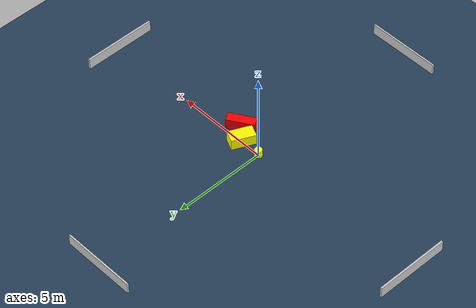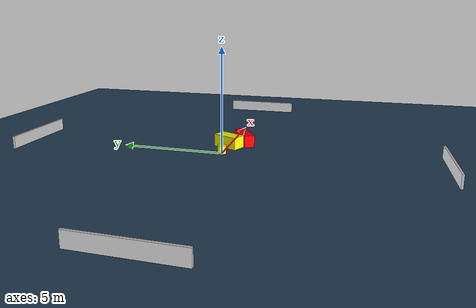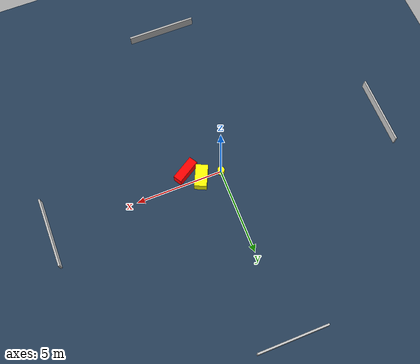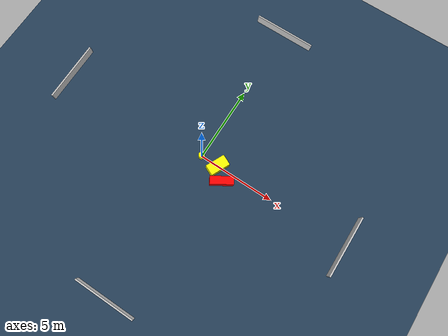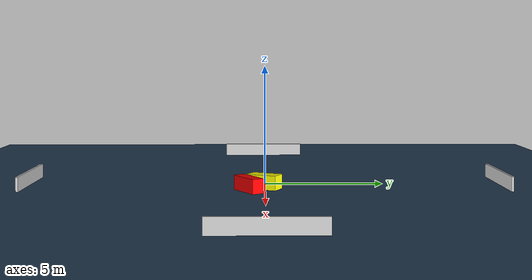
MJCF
<?xml version="1.0" ?>
<mujoco model="generated_environment">
  <option timestep="0.01" integrator="RK4" cone="elliptic"/>
  <default>
    <geom density="1"/>
  </default>
  <asset>
    <texture builtin="gradient" height="3072" name="skybox" rgb1="0.3 0.5 0.7" rgb2="0 0 0" type="skybox" width="512"/>
    <texture builtin="checker" height="300" name="groundplane" rgb1="0.2 0.3 0.4" rgb2="0.1 0.2 0.3" type="2d" width="300"/>
    <material name="groundplane" reflectance="0.2" texrepeat="5 5" texture="groundplane"/>
  </asset>
  <worldbody>
    <light dir="0 0 -1" directional="true" pos="0 0 1.5"/>
    <geom condim="3" friction="0.5 0.005 0.001" material="groundplane" name="floor" pos="0 0 0" size="0 0 0.05" type="plane"/>
    <body name="walls">
      <geom name="wall_1" condim="4" pos="-10.0 0.0 0.3" rgba="0.800000011920929 0.800000011920929 0.800000011920929 1.0" size="0.05 2.0 0.3" type="box"/>
      <geom name="wall_2" condim="4" pos="10.0 0.0 0.3" rgba="0.800000011920929 0.800000011920929 0.800000011920929 1.0" size="0.05 2.0 0.3" type="box"/>
      <geom name="wall_3" condim="4" pos="0.0 -10.0 0.3" rgba="0.800000011920929 0.800000011920929 0.800000011920929 1.0" size="2.0 0.05 0.3" type="box"/>
      <geom name="wall_4" condim="4" pos="0.0 10.0 0.3" rgba="0.800000011920929 0.800000011920929 0.800000011920929 1.0" size="2.0 0.05 0.3" type="box"/>
    </body>
    <body name="robot">
      <joint name="joint_x" type="slide" pos="0 0 0" axis="1 0 0"/>
      <joint name="joint_y" type="slide" pos="0 0 0" axis="0 1 0"/>
      <geom name="robot" type="cylinder" pos="0.0 0.0 0.2" size="0.2 0.2 0.0" mass="5.0" friction="1.0 0.005 0.0001" condim="4" rgba="1.0 1.0 0.0 1.0"/>
    </body>
    <body name="obstacle_1_movable">
      <geom name="obstacle_1_movable" condim="4" pos="1.1830665272023657 -0.02431351112786922 0.3" euler="0 0 64.80005671124088" friction="0.0 0.005 0.001" rgba="1.0 1.0 0.0 1.0" size="0.6445969869737299 0.3498192129423574 0.3" type="box" mass="0.1"/>
      <joint type="free"/>
    </body>
    <body name="obstacle_2_static">
      <geom name="obstacle_2_static" condim="4" pos="1.8818502822945262 -0.6739162679369363 0.3" euler="0 0 31.50622076822119" friction="0.0 0.005 0.001" rgba="1.0 0.0 0.0 1.0" size="0.7351859567687664 0.2534429778093179 0.3" type="box"/>
    </body>
  </worldbody>
  <actuator>
    <motor name="actuator_x" joint="joint_x" gear="1" ctrlrange="-1 1"/>
    <motor name="actuator_y" joint="joint_y" gear="1" ctrlrange="-1 1"/>
  </actuator>
</mujoco>
